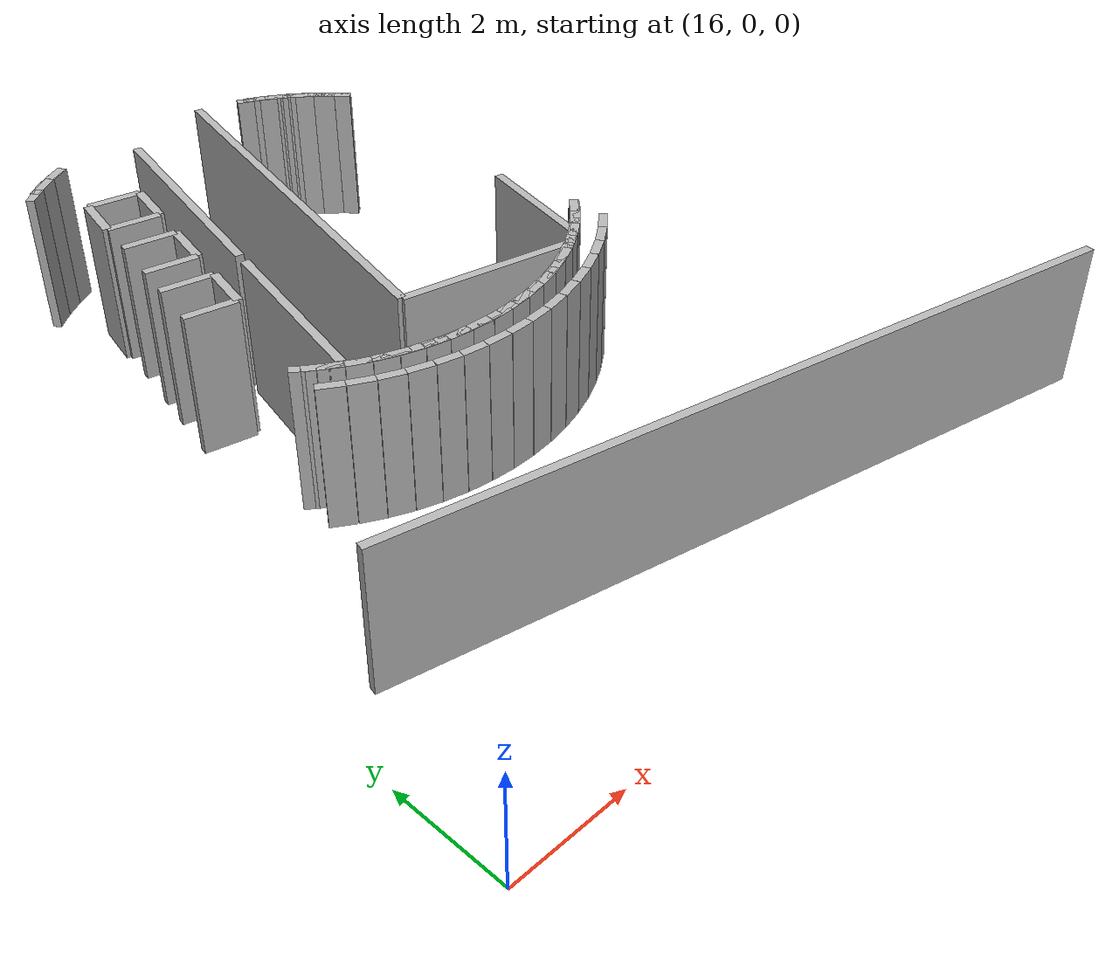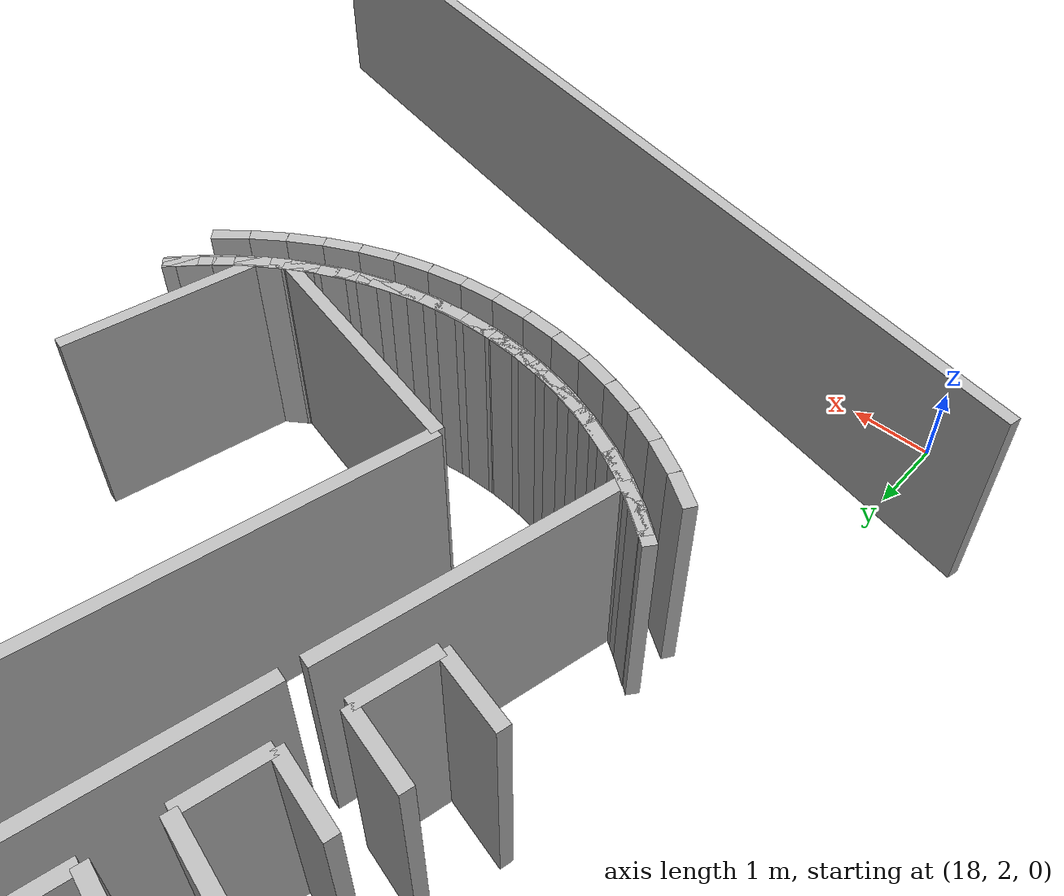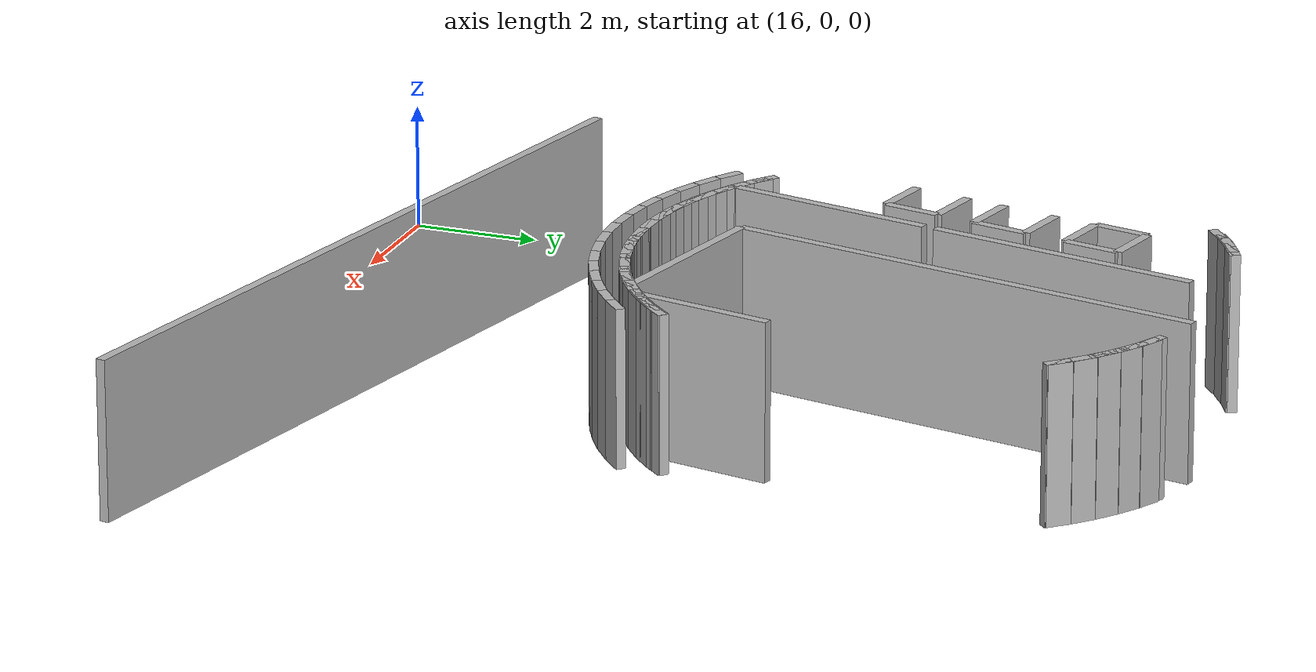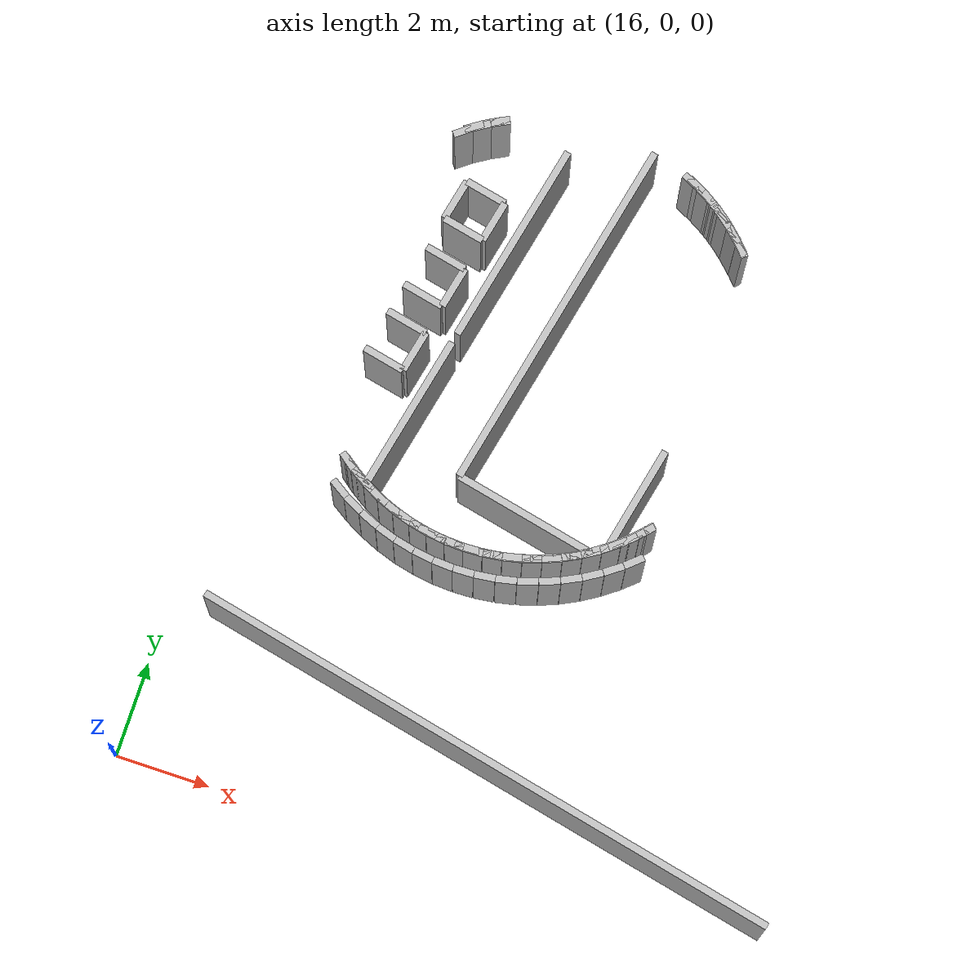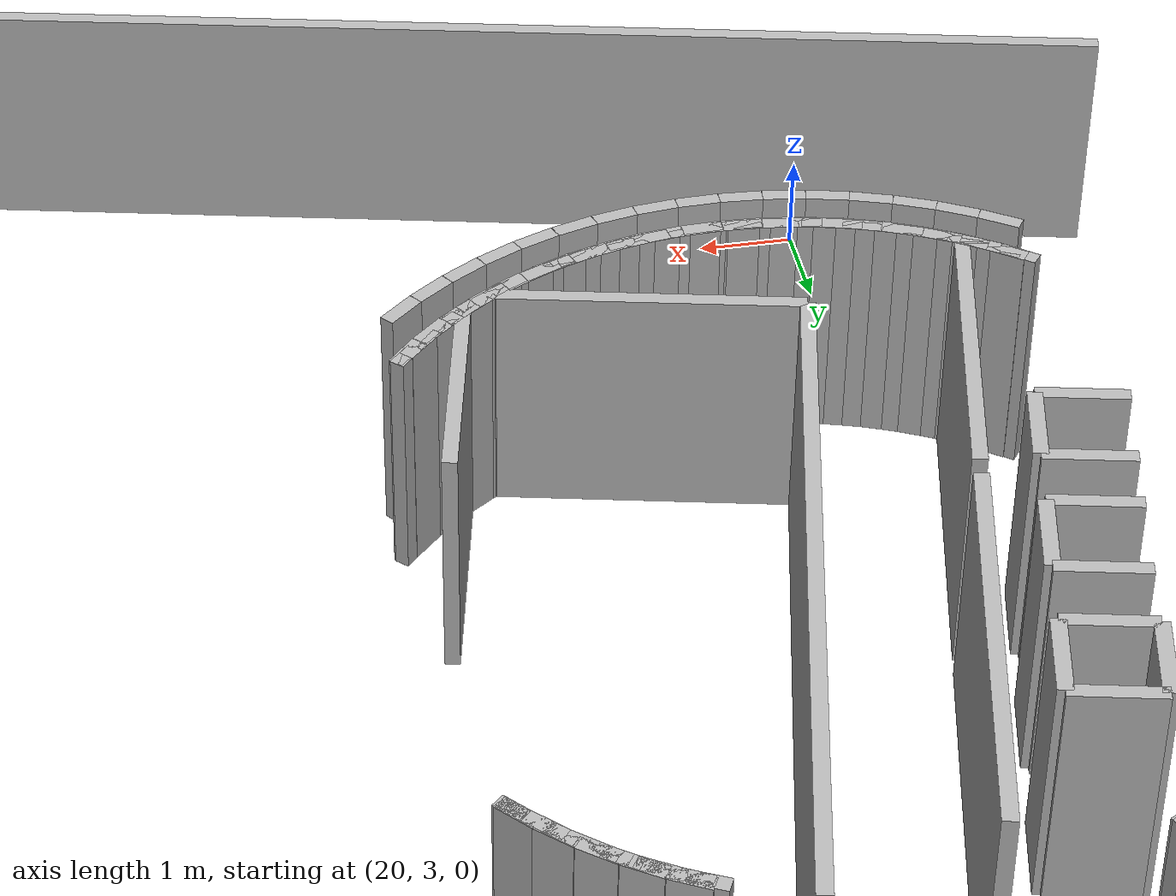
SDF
<sdf version="1.6">
 <model name="sps_2304">
  <static>1</static>
  <allow_auto_disable>0</allow_auto_disable>
  <link name="Wall10480">
   <collision name="collision"><geometry><box><size>12.9834 0.15 2.5</size></box></geometry></collision>
   <visual name="visual">
    <geometry><box><size>12.9834 0.15 2.5</size></box></geometry>
    <transparency>0.0</transparency>
   </visual>
   <pose>23.2192 2.0327 1.25 0 -0 2.92735</pose>
  </link>
  <link name="Wall10485">
   <collision name="collision"><geometry><box><size>0.399556 0.15 2.5</size></box></geometry></collision>
   <visual name="visual">
    <geometry><box><size>0.399556 0.15 2.5</size></box></geometry>
    <transparency>0.0</transparency>
   </visual>
   <pose>18.8158 6.81099 1.25 0 0 -0.624955</pose>
  </link>
  <link name="Wall10486">
   <collision name="collision"><geometry><box><size>0.399554 0.15 2.5</size></box></geometry></collision>
   <visual name="visual">
    <geometry><box><size>0.399554 0.15 2.5</size></box></geometry>
    <transparency>0.0</transparency>
   </visual>
   <pose>19.1495 6.59181 1.25 0 0 -0.537564</pose>
  </link>
  <link name="Wall10487">
   <collision name="collision"><geometry><box><size>0.399592 0.15 2.5</size></box></geometry></collision>
   <visual name="visual">
    <geometry><box><size>0.399592 0.15 2.5</size></box></geometry>
    <transparency>0.0</transparency>
   </visual>
   <pose>19.501 6.4026 1.25 0 0 -0.450054</pose>
  </link>
  <link name="Wall10488">
   <collision name="collision"><geometry><box><size>0.399425 0.15 2.5</size></box></geometry></collision>
   <visual name="visual">
    <geometry><box><size>0.399425 0.15 2.5</size></box></geometry>
    <transparency>0.0</transparency>
   </visual>
   <pose>19.8676 6.2448 1.25 0 0 -0.362884</pose>
  </link>
  <link name="Wall10489">
   <collision name="collision"><geometry><box><size>0.399441 0.15 2.5</size></box></geometry></collision>
   <visual name="visual">
    <geometry><box><size>0.399441 0.15 2.5</size></box></geometry>
    <transparency>0.0</transparency>
   </visual>
   <pose>20.2465 6.11961 1.25 0 0 -0.275298</pose>
  </link>
  <link name="Wall10490">
   <collision name="collision"><geometry><box><size>0.399612 0.15 2.5</size></box></geometry></collision>
   <visual name="visual">
    <geometry><box><size>0.399612 0.15 2.5</size></box></geometry>
    <transparency>0.0</transparency>
   </visual>
   <pose>20.635 6.028 1.25 0 0 -0.1879</pose>
  </link>
  <link name="Wall10491">
   <collision name="collision"><geometry><box><size>0.399406 0.15 2.5</size></box></geometry></collision>
   <visual name="visual">
    <geometry><box><size>0.399406 0.15 2.5</size></box></geometry>
    <transparency>0.0</transparency>
   </visual>
   <pose>21.03 5.97069 1.25 0 0 -0.100262</pose>
  </link>
  <link name="Wall10492">
   <collision name="collision"><geometry><box><size>0.399448 0.15 2.5</size></box></geometry></collision>
   <visual name="visual">
    <geometry><box><size>0.399448 0.15 2.5</size></box></geometry>
    <transparency>0.0</transparency>
   </visual>
   <pose>21.4284 5.9481 1.25 0 0 -0.0129883</pose>
  </link>
  <link name="Wall10493">
   <collision name="collision"><geometry><box><size>0.399488 0.15 2.5</size></box></geometry></collision>
   <visual name="visual">
    <geometry><box><size>0.399488 0.15 2.5</size></box></geometry>
    <transparency>0.0</transparency>
   </visual>
   <pose>21.8273 5.9604 1.25 0 -0 0.0746275</pose>
  </link>
  <link name="Wall10494">
   <collision name="collision"><geometry><box><size>0.399631 0.15 2.5</size></box></geometry></collision>
   <visual name="visual">
    <geometry><box><size>0.399631 0.15 2.5</size></box></geometry>
    <transparency>0.0</transparency>
   </visual>
   <pose>22.2237 6.00749 1.25 0 -0 0.161834</pose>
  </link>
  <link name="Wall10495">
   <collision name="collision"><geometry><box><size>0.399334 0.15 2.5</size></box></geometry></collision>
   <visual name="visual">
    <geometry><box><size>0.399334 0.15 2.5</size></box></geometry>
    <transparency>0.0</transparency>
   </visual>
   <pose>22.6144 6.08888 1.25 0 -0 0.248945</pose>
  </link>
  <link name="Wall10496">
   <collision name="collision"><geometry><box><size>0.399633 0.15 2.5</size></box></geometry></collision>
   <visual name="visual">
    <geometry><box><size>0.399633 0.15 2.5</size></box></geometry>
    <transparency>0.0</transparency>
   </visual>
   <pose>22.9965 6.20409 1.25 0 -0 0.336675</pose>
  </link>
  <link name="Wall10497">
   <collision name="collision"><geometry><box><size>0.399347 0.15 2.5</size></box></geometry></collision>
   <visual name="visual">
    <geometry><box><size>0.399347 0.15 2.5</size></box></geometry>
    <transparency>0.0</transparency>
   </visual>
   <pose>23.3671 6.35228 1.25 0 -0 0.424199</pose>
  </link>
  <link name="Wall10498">
   <collision name="collision"><geometry><box><size>0.399604 0.15 2.5</size></box></geometry></collision>
   <visual name="visual">
    <geometry><box><size>0.399604 0.15 2.5</size></box></geometry>
    <transparency>0.0</transparency>
   </visual>
   <pose>23.7233 6.53227 1.25 0 -0 0.511549</pose>
  </link>
  <link name="Wall10499">
   <collision name="collision"><geometry><box><size>0.399597 0.15 2.5</size></box></geometry></collision>
   <visual name="visual">
    <geometry><box><size>0.399597 0.15 2.5</size></box></geometry>
    <transparency>0.0</transparency>
   </visual>
   <pose>24.0625 6.74278 1.25 0 -0 0.599314</pose>
  </link>
  <link name="Wall10500">
   <collision name="collision"><geometry><box><size>0.399372 0.15 2.5</size></box></geometry></collision>
   <visual name="visual">
    <geometry><box><size>0.399372 0.15 2.5</size></box></geometry>
    <transparency>0.0</transparency>
   </visual>
   <pose>24.3819 6.98198 1.25 0 -0 0.686031</pose>
  </link>
  <link name="Wall10501">
   <collision name="collision"><geometry><box><size>0.399541 0.15 2.5</size></box></geometry></collision>
   <visual name="visual">
    <geometry><box><size>0.399541 0.15 2.5</size></box></geometry>
    <transparency>0.0</transparency>
   </visual>
   <pose>24.6793 7.24818 1.25 0 -0 0.774488</pose>
  </link>
  <link name="Wall10571">
   <collision name="collision"><geometry><box><size>0.396974 0.15 2.5</size></box></geometry></collision>
   <visual name="visual">
    <geometry><box><size>0.396974 0.15 2.5</size></box></geometry>
    <transparency>0.0</transparency>
   </visual>
   <pose>24.2517 14.0828 1.25 0 0 -0.655002</pose>
  </link>
  <link name="Wall10572">
   <collision name="collision"><geometry><box><size>0.396915 0.15 2.5</size></box></geometry></collision>
   <visual name="visual">
    <geometry><box><size>0.396915 0.15 2.5</size></box></geometry>
    <transparency>0.0</transparency>
   </visual>
   <pose>24.5554 13.8278 1.25 0 0 -0.741891</pose>
  </link>
  <link name="Wall10573">
   <collision name="collision"><geometry><box><size>0.39705 0.15 2.5</size></box></geometry></collision>
   <visual name="visual">
    <geometry><box><size>0.39705 0.15 2.5</size></box></geometry>
    <transparency>0.0</transparency>
   </visual>
   <pose>24.8358 13.5473 1.25 0 0 -0.829217</pose>
  </link>
  <link name="Wall10590">
   <collision name="collision"><geometry><box><size>0.396915 0.15 2.5</size></box></geometry></collision>
   <visual name="visual">
    <geometry><box><size>0.396915 0.15 2.5</size></box></geometry>
    <transparency>0.0</transparency>
   </visual>
   <pose>24.8339 7.40498 1.25 0 0 -2.31269</pose>
  </link>
  <link name="Wall10591">
   <collision name="collision"><geometry><box><size>0.39705 0.15 2.5</size></box></geometry></collision>
   <visual name="visual">
    <geometry><box><size>0.39705 0.15 2.5</size></box></geometry>
    <transparency>0.0</transparency>
   </visual>
   <pose>24.5535 7.12459 1.25 0 0 -2.40001</pose>
  </link>
  <link name="Wall10592">
   <collision name="collision"><geometry><box><size>0.396971 0.15 2.5</size></box></geometry></collision>
   <visual name="visual">
    <geometry><box><size>0.396971 0.15 2.5</size></box></geometry>
    <transparency>0.0</transparency>
   </visual>
   <pose>24.2496 6.8697 1.25 0 0 -2.48736</pose>
  </link>
  <link name="Wall10593">
   <collision name="collision"><geometry><box><size>0.396899 0.15 2.5</size></box></geometry></collision>
   <visual name="visual">
    <geometry><box><size>0.396899 0.15 2.5</size></box></geometry>
    <transparency>0.0</transparency>
   </visual>
   <pose>23.9247 6.64232 1.25 0 0 -2.57453</pose>
  </link>
  <link name="Wall10594">
   <collision name="collision"><geometry><box><size>0.39704 0.15 2.5</size></box></geometry></collision>
   <visual name="visual">
    <geometry><box><size>0.39704 0.15 2.5</size></box></geometry>
    <transparency>0.0</transparency>
   </visual>
   <pose>23.5812 6.44411 1.25 0 0 -2.66193</pose>
  </link>
  <link name="Wall10595">
   <collision name="collision"><geometry><box><size>0.396988 0.15 2.5</size></box></geometry></collision>
   <visual name="visual">
    <geometry><box><size>0.396988 0.15 2.5</size></box></geometry>
    <transparency>0.0</transparency>
   </visual>
   <pose>23.2216 6.2766 1.25 0 0 -2.74924</pose>
  </link>
  <link name="Wall10596">
   <collision name="collision"><geometry><box><size>0.396923 0.15 2.5</size></box></geometry></collision>
   <visual name="visual">
    <geometry><box><size>0.396923 0.15 2.5</size></box></geometry>
    <transparency>0.0</transparency>
   </visual>
   <pose>22.8489 6.1411 1.25 0 0 -2.83657</pose>
  </link>
  <link name="Wall10597">
   <collision name="collision"><geometry><box><size>0.39696 0.15 2.5</size></box></geometry></collision>
   <visual name="visual">
    <geometry><box><size>0.39696 0.15 2.5</size></box></geometry>
    <transparency>0.0</transparency>
   </visual>
   <pose>22.4658 6.03859 1.25 0 0 -2.92369</pose>
  </link>
  <link name="Wall10598">
   <collision name="collision"><geometry><box><size>0.397004 0.15 2.5</size></box></geometry></collision>
   <visual name="visual">
    <geometry><box><size>0.397004 0.15 2.5</size></box></geometry>
    <transparency>0.0</transparency>
   </visual>
   <pose>22.0752 5.9698 1.25 0 0 -3.01085</pose>
  </link>
  <link name="Wall10599">
   <collision name="collision"><geometry><box><size>0.39698 0.15 2.5</size></box></geometry></collision>
   <visual name="visual">
    <geometry><box><size>0.39698 0.15 2.5</size></box></geometry>
    <transparency>0.0</transparency>
   </visual>
   <pose>21.6801 5.93532 1.25 0 0 -3.09822</pose>
  </link>
  <link name="Wall10600">
   <collision name="collision"><geometry><box><size>0.396996 0.15 2.5</size></box></geometry></collision>
   <visual name="visual">
    <geometry><box><size>0.396996 0.15 2.5</size></box></geometry>
    <transparency>0.0</transparency>
   </visual>
   <pose>21.2835 5.9355 1.25 0 -0 3.0973</pose>
  </link>
  <link name="Wall10601">
   <collision name="collision"><geometry><box><size>0.39677 0.15 2.5</size></box></geometry></collision>
   <visual name="visual">
    <geometry><box><size>0.39677 0.15 2.5</size></box></geometry>
    <transparency>0.0</transparency>
   </visual>
   <pose>20.8885 5.9702 1.25 0 -0 3.01062</pose>
  </link>
  <link name="Wall10602">
   <collision name="collision"><geometry><box><size>0.397 0.15 2.5</size></box></geometry></collision>
   <visual name="visual">
    <geometry><box><size>0.397 0.15 2.5</size></box></geometry>
    <transparency>0.0</transparency>
   </visual>
   <pose>20.4981 6.03911 1.25 0 -0 2.92324</pose>
  </link>
  <link name="Wall10603">
   <collision name="collision"><geometry><box><size>0.397033 0.15 2.5</size></box></geometry></collision>
   <visual name="visual">
    <geometry><box><size>0.397033 0.15 2.5</size></box></geometry>
    <transparency>0.0</transparency>
   </visual>
   <pose>20.115 6.14189 1.25 0 -0 2.83569</pose>
  </link>
  <link name="Wall10604">
   <collision name="collision"><geometry><box><size>0.396912 0.15 2.5</size></box></geometry></collision>
   <visual name="visual">
    <geometry><box><size>0.396912 0.15 2.5</size></box></geometry>
    <transparency>0.0</transparency>
   </visual>
   <pose>19.7424 6.27769 1.25 0 -0 2.74849</pose>
  </link>
  <link name="Wall10605">
   <collision name="collision"><geometry><box><size>0.39688 0.15 2.5</size></box></geometry></collision>
   <visual name="visual">
    <geometry><box><size>0.39688 0.15 2.5</size></box></geometry>
    <transparency>0.0</transparency>
   </visual>
   <pose>19.383 6.44539 1.25 0 -0 2.66137</pose>
  </link>
  <link name="Wall10606">
   <collision name="collision"><geometry><box><size>0.39703 0.15 2.5</size></box></geometry></collision>
   <visual name="visual">
    <geometry><box><size>0.39703 0.15 2.5</size></box></geometry>
    <transparency>0.0</transparency>
   </visual>
   <pose>19.0397 6.64378 1.25 0 -0 2.57401</pose>
  </link>
  <link name="Wall10607">
   <collision name="collision"><geometry><box><size>0.396826 0.15 2.5</size></box></geometry></collision>
   <visual name="visual">
    <geometry><box><size>0.396826 0.15 2.5</size></box></geometry>
    <transparency>0.0</transparency>
   </visual>
   <pose>18.7149 6.87129 1.25 0 -0 2.48708</pose>
  </link>
  <link name="Wall10628">
   <collision name="collision"><geometry><box><size>0.396971 0.15 2.5</size></box></geometry></collision>
   <visual name="visual">
    <geometry><box><size>0.396971 0.15 2.5</size></box></geometry>
    <transparency>0.0</transparency>
   </visual>
   <pose>18.717 14.0843 1.25 0 -0 0.654233</pose>
  </link>
  <link name="Wall10629">
   <collision name="collision"><geometry><box><size>0.396899 0.15 2.5</size></box></geometry></collision>
   <visual name="visual">
    <geometry><box><size>0.396899 0.15 2.5</size></box></geometry>
    <transparency>0.0</transparency>
   </visual>
   <pose>19.0419 14.3117 1.25 0 -0 0.567059</pose>
  </link>
  <link name="Wall10630">
   <collision name="collision"><geometry><box><size>0.39704 0.15 2.5</size></box></geometry></collision>
   <visual name="visual">
    <geometry><box><size>0.39704 0.15 2.5</size></box></geometry>
    <transparency>0.0</transparency>
   </visual>
   <pose>19.3854 14.5099 1.25 0 -0 0.479667</pose>
  </link>
  <link name="Wall10641">
   <collision name="collision"><geometry><box><size>0.396962 0.15 2.5</size></box></geometry></collision>
   <visual name="visual">
    <geometry><box><size>0.396962 0.15 2.5</size></box></geometry>
    <transparency>0.0</transparency>
   </visual>
   <pose>23.5835 14.5088 1.25 0 0 -0.480289</pose>
  </link>
  <link name="Wall11240">
   <collision name="collision"><geometry><box><size>3.0464 0.15 2.5</size></box></geometry></collision>
   <visual name="visual">
    <geometry><box><size>3.0464 0.15 2.5</size></box></geometry>
    <transparency>0.0</transparency>
   </visual>
   <pose>22.4169 6.96437 1.25 0 -0 2.92866</pose>
  </link>
  <link name="Wall11241">
   <collision name="collision"><geometry><box><size>7.78294 0.15 2.5</size></box></geometry></collision>
   <visual name="visual">
    <geometry><box><size>7.78294 0.15 2.5</size></box></geometry>
    <transparency>0.0</transparency>
   </visual>
   <pose>21.7503 11.0899 1.25 0 -0 1.35791</pose>
  </link>
  <link name="Wall11245">
   <collision name="collision"><geometry><box><size>0.37144 0.15 2.5</size></box></geometry></collision>
   <visual name="visual">
    <geometry><box><size>0.37144 0.15 2.5</size></box></geometry>
    <transparency>0.0</transparency>
   </visual>
   <pose>23.4463 14.5757 1.25 0 0 -0.446524</pose>
  </link>
  <link name="Wall11246">
   <collision name="collision"><geometry><box><size>0.371357 0.15 2.5</size></box></geometry></collision>
   <visual name="visual">
    <geometry><box><size>0.371357 0.15 2.5</size></box></geometry>
    <transparency>0.0</transparency>
   </visual>
   <pose>23.7742 14.4018 1.25 0 0 -0.528891</pose>
  </link>
  <link name="Wall11247">
   <collision name="collision"><geometry><box><size>0.0620287 0.15 2.5</size></box></geometry></collision>
   <visual name="visual">
    <geometry><box><size>0.0620287 0.15 2.5</size></box></geometry>
    <transparency>0.0</transparency>
   </visual>
   <pose>23.9605 14.2912 1.25 0 0 -0.57654</pose>
  </link>
  <link name="Wall11248">
   <collision name="collision"><geometry><box><size>0.0417111 0.15 2.5</size></box></geometry></collision>
   <visual name="visual">
    <geometry><box><size>0.0417111 0.15 2.5</size></box></geometry>
    <transparency>0.0</transparency>
   </visual>
   <pose>24.0039 14.2628 1.25 0 0 -0.58435</pose>
  </link>
  <link name="Wall11249">
   <collision name="collision"><geometry><box><size>0.101952 0.15 2.5</size></box></geometry></collision>
   <visual name="visual">
    <geometry><box><size>0.101952 0.15 2.5</size></box></geometry>
    <transparency>0.0</transparency>
   </visual>
   <pose>24.0633 14.2224 1.25 0 0 -0.602781</pose>
  </link>
  <link name="Wall11250">
   <collision name="collision"><geometry><box><size>0.0912877 0.15 2.5</size></box></geometry></collision>
   <visual name="visual">
    <geometry><box><size>0.0912877 0.15 2.5</size></box></geometry>
    <transparency>0.0</transparency>
   </visual>
   <pose>24.1423 14.1668 1.25 0 0 -0.624913</pose>
  </link>
  <link name="Wall11251">
   <collision name="collision"><geometry><box><size>0.393256 0.15 2.5</size></box></geometry></collision>
   <visual name="visual">
    <geometry><box><size>0.393256 0.15 2.5</size></box></geometry>
    <transparency>0.0</transparency>
   </visual>
   <pose>24.332 14.0162 1.25 0 0 -0.681722</pose>
  </link>
  <link name="Wall11252">
   <collision name="collision"><geometry><box><size>0.393359 0.15 2.5</size></box></geometry></collision>
   <visual name="visual">
    <geometry><box><size>0.393359 0.15 2.5</size></box></geometry>
    <transparency>0.0</transparency>
   </visual>
   <pose>24.6261 13.7556 1.25 0 0 -0.768391</pose>
  </link>
  <link name="Wall11267">
   <collision name="collision"><geometry><box><size>2.28003 0.15 2.5</size></box></geometry></collision>
   <visual name="visual">
    <geometry><box><size>2.28003 0.15 2.5</size></box></geometry>
    <transparency>0.0</transparency>
   </visual>
   <pose>24.4531 7.968 1.25 0 0 -1.78364</pose>
  </link>
  <link name="Wall16807">
   <collision name="collision"><geometry><box><size>3.31596 0.15 2.5</size></box></geometry></collision>
   <visual name="visual">
    <geometry><box><size>3.31596 0.15 2.5</size></box></geometry>
    <transparency>0.0</transparency>
   </visual>
   <pose>19.5658 8.22438 1.25 0 0 -1.78388</pose>
  </link>
  <link name="Wall16808">
   <collision name="collision"><geometry><box><size>0.0517386 0.15 2.5</size></box></geometry></collision>
   <visual name="visual">
    <geometry><box><size>0.0517386 0.15 2.5</size></box></geometry>
    <transparency>0.0</transparency>
   </visual>
   <pose>19.2098 6.5786 1.25 0 0 -1.78115</pose>
  </link>
  <link name="Wall16824">
   <collision name="collision"><geometry><box><size>0.396791 0.15 2.5</size></box></geometry></collision>
   <visual name="visual">
    <geometry><box><size>0.396791 0.15 2.5</size></box></geometry>
    <transparency>0.0</transparency>
   </visual>
   <pose>24.8274 13.5668 1.25 0 -0 2.31235</pose>
  </link>
  <link name="Wall16825">
   <collision name="collision"><geometry><box><size>0.396915 0.15 2.5</size></box></geometry></collision>
   <visual name="visual">
    <geometry><box><size>0.396915 0.15 2.5</size></box></geometry>
    <transparency>0.0</transparency>
   </visual>
   <pose>24.5471 13.8472 1.25 0 -0 2.3997</pose>
  </link>
  <link name="Wall16826">
   <collision name="collision"><geometry><box><size>0.39712 0.15 2.5</size></box></geometry></collision>
   <visual name="visual">
    <geometry><box><size>0.39712 0.15 2.5</size></box></geometry>
    <transparency>0.0</transparency>
   </visual>
   <pose>24.2433 14.1022 1.25 0 -0 2.48687</pose>
  </link>
  <link name="Wall16827">
   <collision name="collision"><geometry><box><size>0.396843 0.15 2.5</size></box></geometry></collision>
   <visual name="visual">
    <geometry><box><size>0.396843 0.15 2.5</size></box></geometry>
    <transparency>0.0</transparency>
   </visual>
   <pose>23.9185 14.3298 1.25 0 -0 2.5739</pose>
  </link>
  <link name="Wall16828">
   <collision name="collision"><geometry><box><size>0.396908 0.15 2.5</size></box></geometry></collision>
   <visual name="visual">
    <geometry><box><size>0.396908 0.15 2.5</size></box></geometry>
    <transparency>0.0</transparency>
   </visual>
   <pose>23.5752 14.5282 1.25 0 -0 2.66123</pose>
  </link>
  <link name="Wall16839">
   <collision name="collision"><geometry><box><size>0.396796 0.15 2.5</size></box></geometry></collision>
   <visual name="visual">
    <geometry><box><size>0.396796 0.15 2.5</size></box></geometry>
    <transparency>0.0</transparency>
   </visual>
   <pose>19.3771 14.5293 1.25 0 0 -2.66178</pose>
  </link>
  <link name="Wall16840">
   <collision name="collision"><geometry><box><size>0.397105 0.15 2.5</size></box></geometry></collision>
   <visual name="visual">
    <geometry><box><size>0.397105 0.15 2.5</size></box></geometry>
    <transparency>0.0</transparency>
   </visual>
   <pose>19.0336 14.3311 1.25 0 0 -2.57486</pose>
  </link>
  <link name="Wall16863">
   <collision name="collision"><geometry><box><size>0.396899 0.15 2.5</size></box></geometry></collision>
   <visual name="visual">
    <geometry><box><size>0.396899 0.15 2.5</size></box></geometry>
    <transparency>0.0</transparency>
   </visual>
   <pose>19.0317 6.66307 1.25 0 0 -0.567059</pose>
  </link>
  <link name="Wall16864">
   <collision name="collision"><geometry><box><size>0.39688 0.15 2.5</size></box></geometry></collision>
   <visual name="visual">
    <geometry><box><size>0.39688 0.15 2.5</size></box></geometry>
    <transparency>0.0</transparency>
   </visual>
   <pose>19.3751 6.4648 1.25 0 0 -0.480223</pose>
  </link>
  <link name="Wall16865">
   <collision name="collision"><geometry><box><size>0.397081 0.15 2.5</size></box></geometry></collision>
   <visual name="visual">
    <geometry><box><size>0.397081 0.15 2.5</size></box></geometry>
    <transparency>0.0</transparency>
   </visual>
   <pose>19.7345 6.2971 1.25 0 0 -0.392923</pose>
  </link>
  <link name="Wall16866">
   <collision name="collision"><geometry><box><size>0.3968 0.15 2.5</size></box></geometry></collision>
   <visual name="visual">
    <geometry><box><size>0.3968 0.15 2.5</size></box></geometry>
    <transparency>0.0</transparency>
   </visual>
   <pose>20.107 6.1613 1.25 0 0 -0.306087</pose>
  </link>
  <link name="Wall16867">
   <collision name="collision"><geometry><box><size>0.397059 0.15 2.5</size></box></geometry></collision>
   <visual name="visual">
    <geometry><box><size>0.397059 0.15 2.5</size></box></geometry>
    <transparency>0.0</transparency>
   </visual>
   <pose>20.49 6.05852 1.25 0 0 -0.218319</pose>
  </link>
  <link name="Wall16868">
   <collision name="collision"><geometry><box><size>0.397012 0.15 2.5</size></box></geometry></collision>
   <visual name="visual">
    <geometry><box><size>0.397012 0.15 2.5</size></box></geometry>
    <transparency>0.0</transparency>
   </visual>
   <pose>20.8807 5.98961 1.25 0 0 -0.130896</pose>
  </link>
  <link name="Wall16869">
   <collision name="collision"><geometry><box><size>0.396988 0.15 2.5</size></box></geometry></collision>
   <visual name="visual">
    <geometry><box><size>0.396988 0.15 2.5</size></box></geometry>
    <transparency>0.0</transparency>
   </visual>
   <pose>21.2758 5.955 1.25 0 0 -0.0438316</pose>
  </link>
  <link name="Wall16870">
   <collision name="collision"><geometry><box><size>0.396736 0.15 2.5</size></box></geometry></collision>
   <visual name="visual">
    <geometry><box><size>0.396736 0.15 2.5</size></box></geometry>
    <transparency>0.0</transparency>
   </visual>
   <pose>21.6723 5.95491 1.25 0 -0 0.0433974</pose>
  </link>
  <link name="Wall16871">
   <collision name="collision"><geometry><box><size>0.397162 0.15 2.5</size></box></geometry></collision>
   <visual name="visual">
    <geometry><box><size>0.397162 0.15 2.5</size></box></geometry>
    <transparency>0.0</transparency>
   </visual>
   <pose>22.0673 5.9893 1.25 0 -0 0.130226</pose>
  </link>
  <link name="Wall16872">
   <collision name="collision"><geometry><box><size>0.396781 0.15 2.5</size></box></geometry></collision>
   <visual name="visual">
    <geometry><box><size>0.396781 0.15 2.5</size></box></geometry>
    <transparency>0.0</transparency>
   </visual>
   <pose>22.4579 6.058 1.25 0 -0 0.218002</pose>
  </link>
  <link name="Wall16873">
   <collision name="collision"><geometry><box><size>0.396978 0.15 2.5</size></box></geometry></collision>
   <visual name="visual">
    <geometry><box><size>0.396978 0.15 2.5</size></box></geometry>
    <transparency>0.0</transparency>
   </visual>
   <pose>22.8409 6.1606 1.25 0 -0 0.305462</pose>
  </link>
  <link name="Wall16874">
   <collision name="collision"><geometry><box><size>0.396988 0.15 2.5</size></box></geometry></collision>
   <visual name="visual">
    <geometry><box><size>0.396988 0.15 2.5</size></box></geometry>
    <transparency>0.0</transparency>
   </visual>
   <pose>23.2136 6.29619 1.25 0 -0 0.392355</pose>
  </link>
  <link name="Wall16875">
   <collision name="collision"><geometry><box><size>0.396986 0.15 2.5</size></box></geometry></collision>
   <visual name="visual">
    <geometry><box><size>0.396986 0.15 2.5</size></box></geometry>
    <transparency>0.0</transparency>
   </visual>
   <pose>23.5731 6.4637 1.25 0 -0 0.479738</pose>
  </link>
  <link name="Wall16876">
   <collision name="collision"><geometry><box><size>0.39695 0.15 2.5</size></box></geometry></collision>
   <visual name="visual">
    <geometry><box><size>0.39695 0.15 2.5</size></box></geometry>
    <transparency>0.0</transparency>
   </visual>
   <pose>23.9166 6.66191 1.25 0 -0 0.566977</pose>
  </link>
  <link name="Wall16877">
   <collision name="collision"><geometry><box><size>0.396971 0.15 2.5</size></box></geometry></collision>
   <visual name="visual">
    <geometry><box><size>0.396971 0.15 2.5</size></box></geometry>
    <transparency>0.0</transparency>
   </visual>
   <pose>24.2416 6.8893 1.25 0 -0 0.654233</pose>
  </link>
  <link name="Wall16878">
   <collision name="collision"><geometry><box><size>0.396926 0.15 2.5</size></box></geometry></collision>
   <visual name="visual">
    <geometry><box><size>0.396926 0.15 2.5</size></box></geometry>
    <transparency>0.0</transparency>
   </visual>
   <pose>24.5455 7.14409 1.25 0 -0 0.741239</pose>
  </link>
  <link name="Wall16879">
   <collision name="collision"><geometry><box><size>0.396915 0.15 2.5</size></box></geometry></collision>
   <visual name="visual">
    <geometry><box><size>0.396915 0.15 2.5</size></box></geometry>
    <transparency>0.0</transparency>
   </visual>
   <pose>24.8259 7.42439 1.25 0 -0 0.828906</pose>
  </link>
  <link name="Wall23970">
   <collision name="collision"><geometry><box><size>0.399715 0.15 2.5</size></box></geometry></collision>
   <visual name="visual">
    <geometry><box><size>0.399715 0.15 2.5</size></box></geometry>
    <transparency>0.0</transparency>
   </visual>
   <pose>19.2458 14.4609 1.25 0 0 -2.63142</pose>
  </link>
  <link name="Wall23971">
   <collision name="collision"><geometry><box><size>0.39986 0.15 2.5</size></box></geometry></collision>
   <visual name="visual">
    <geometry><box><size>0.39986 0.15 2.5</size></box></geometry>
    <transparency>0.0</transparency>
   </visual>
   <pose>18.9062 14.2508 1.25 0 0 -2.54402</pose>
  </link>
  <link name="Wall23993">
   <collision name="collision"><geometry><box><size>0.399886 0.15 2.5</size></box></geometry></collision>
   <visual name="visual">
    <geometry><box><size>0.399886 0.15 2.5</size></box></geometry>
    <transparency>0.0</transparency>
   </visual>
   <pose>18.8603 6.76778 1.25 0 0 -0.609763</pose>
  </link>
  <link name="Wall23994">
   <collision name="collision"><geometry><box><size>0.399882 0.15 2.5</size></box></geometry></collision>
   <visual name="visual">
    <geometry><box><size>0.399882 0.15 2.5</size></box></geometry>
    <transparency>0.0</transparency>
   </visual>
   <pose>19.1976 6.55357 1.25 0 0 -0.522043</pose>
  </link>
  <link name="Wall23995">
   <collision name="collision"><geometry><box><size>0.399804 0.15 2.5</size></box></geometry></collision>
   <visual name="visual">
    <geometry><box><size>0.399804 0.15 2.5</size></box></geometry>
    <transparency>0.0</transparency>
   </visual>
   <pose>19.5522 6.36967 1.25 0 0 -0.434764</pose>
  </link>
  <link name="Wall23996">
   <collision name="collision"><geometry><box><size>0.39984 0.15 2.5</size></box></geometry></collision>
   <visual name="visual">
    <geometry><box><size>0.39984 0.15 2.5</size></box></geometry>
    <transparency>0.0</transparency>
   </visual>
   <pose>19.9216 6.2177 1.25 0 0 -0.345889</pose>
  </link>
  <link name="Wall23997">
   <collision name="collision"><geometry><box><size>0.399709 0.15 2.5</size></box></geometry></collision>
   <visual name="visual">
    <geometry><box><size>0.399709 0.15 2.5</size></box></geometry>
    <transparency>0.0</transparency>
   </visual>
   <pose>20.3028 6.0988 1.25 0 0 -0.258645</pose>
  </link>
  <link name="Wall23998">
   <collision name="collision"><geometry><box><size>0.399775 0.15 2.5</size></box></geometry></collision>
   <visual name="visual">
    <geometry><box><size>0.399775 0.15 2.5</size></box></geometry>
    <transparency>0.0</transparency>
   </visual>
   <pose>20.693 6.01378 1.25 0 0 -0.170445</pose>
  </link>
  <link name="Wall23999">
   <collision name="collision"><geometry><box><size>0.399981 0.15 2.5</size></box></geometry></collision>
   <visual name="visual">
    <geometry><box><size>0.399981 0.15 2.5</size></box></geometry>
    <transparency>0.0</transparency>
   </visual>
   <pose>21.0893 5.96339 1.25 0 0 -0.0824949</pose>
  </link>
  <link name="Wall24000">
   <collision name="collision"><geometry><box><size>0.399785 0.15 2.5</size></box></geometry></collision>
   <visual name="visual">
    <geometry><box><size>0.399785 0.15 2.5</size></box></geometry>
    <transparency>0.0</transparency>
   </visual>
   <pose>21.4885 5.94789 1.25 0 -0 0.00488546</pose>
  </link>
  <link name="Wall24001">
   <collision name="collision"><geometry><box><size>0.399748 0.15 2.5</size></box></geometry></collision>
   <visual name="visual">
    <geometry><box><size>0.399748 0.15 2.5</size></box></geometry>
    <transparency>0.0</transparency>
   </visual>
   <pose>21.8874 5.96748 1.25 0 -0 0.0932725</pose>
  </link>
  <link name="Wall24002">
   <collision name="collision"><geometry><box><size>0.39973 0.15 2.5</size></box></geometry></collision>
   <visual name="visual">
    <geometry><box><size>0.39973 0.15 2.5</size></box></geometry>
    <transparency>0.0</transparency>
   </visual>
   <pose>22.283 6.02211 1.25 0 -0 0.181165</pose>
  </link>
  <link name="Wall24003">
   <collision name="collision"><geometry><box><size>0.400026 0.15 2.5</size></box></geometry></collision>
   <visual name="visual">
    <geometry><box><size>0.400026 0.15 2.5</size></box></geometry>
    <transparency>0.0</transparency>
   </visual>
   <pose>22.6724 6.11131 1.25 0 -0 0.269183</pose>
  </link>
  <link name="Wall24004">
   <collision name="collision"><geometry><box><size>0.399737 0.15 2.5</size></box></geometry></collision>
   <visual name="visual">
    <geometry><box><size>0.399737 0.15 2.5</size></box></geometry>
    <transparency>0.0</transparency>
   </visual>
   <pose>23.0525 6.2343 1.25 0 -0 0.356716</pose>
  </link>
  <link name="Wall24005">
   <collision name="collision"><geometry><box><size>0.399735 0.15 2.5</size></box></geometry></collision>
   <visual name="visual">
    <geometry><box><size>0.399735 0.15 2.5</size></box></geometry>
    <transparency>0.0</transparency>
   </visual>
   <pose>23.4202 6.39009 1.25 0 -0 0.4448</pose>
  </link>
  <link name="Wall24006">
   <collision name="collision"><geometry><box><size>0.399743 0.15 2.5</size></box></geometry></collision>
   <visual name="visual">
    <geometry><box><size>0.399743 0.15 2.5</size></box></geometry>
    <transparency>0.0</transparency>
   </visual>
   <pose>23.7728 6.57759 1.25 0 -0 0.532669</pose>
  </link>
  <link name="Wall24007">
   <collision name="collision"><geometry><box><size>0.40002 0.15 2.5</size></box></geometry></collision>
   <visual name="visual">
    <geometry><box><size>0.40002 0.15 2.5</size></box></geometry>
    <transparency>0.0</transparency>
   </visual>
   <pose>24.1077 6.79539 1.25 0 -0 0.620551</pose>
  </link>
  <link name="Wall24008">
   <collision name="collision"><geometry><box><size>0.399833 0.15 2.5</size></box></geometry></collision>
   <visual name="visual">
    <geometry><box><size>0.399833 0.15 2.5</size></box></geometry>
    <transparency>0.0</transparency>
   </visual>
   <pose>24.4223 7.04179 1.25 0 -0 0.708577</pose>
  </link>
  <link name="Wall24009">
   <collision name="collision"><geometry><box><size>0.399669 0.15 2.5</size></box></geometry></collision>
   <visual name="visual">
    <geometry><box><size>0.399669 0.15 2.5</size></box></geometry>
    <transparency>0.0</transparency>
   </visual>
   <pose>24.7139 7.31468 1.25 0 -0 0.795981</pose>
  </link>
  <link name="Wall24027">
   <collision name="collision"><geometry><box><size>0.399749 0.15 2.5</size></box></geometry></collision>
   <visual name="visual">
    <geometry><box><size>0.399749 0.15 2.5</size></box></geometry>
    <transparency>0.0</transparency>
   </visual>
   <pose>24.6061 13.7788 1.25 0 -0 2.37887</pose>
  </link>
  <link name="Wall28993">
   <collision name="collision"><geometry><box><size>0.895262 0.15 2.5</size></box></geometry></collision>
   <visual name="visual">
    <geometry><box><size>0.895262 0.15 2.5</size></box></geometry>
    <transparency>0.0</transparency>
   </visual>
   <pose>19.2384 11.464 1.25 0 0 -0.21316</pose>
  </link>
  <link name="Wall28994">
   <collision name="collision"><geometry><box><size>0.894985 0.15 2.5</size></box></geometry></collision>
   <visual name="visual">
    <geometry><box><size>0.894985 0.15 2.5</size></box></geometry>
    <transparency>0.0</transparency>
   </visual>
   <pose>19.5813 10.9319 1.25 0 0 -1.78381</pose>
  </link>
  <link name="Wall28995">
   <collision name="collision"><geometry><box><size>0.895211 0.15 2.5</size></box></geometry></collision>
   <visual name="visual">
    <geometry><box><size>0.895211 0.15 2.5</size></box></geometry>
    <transparency>0.0</transparency>
   </visual>
   <pose>19.0492 10.5891 1.25 0 -0 2.9287</pose>
  </link>
  <link name="Wall29016">
   <collision name="collision"><geometry><box><size>0.435345 0.15 2.5</size></box></geometry></collision>
   <visual name="visual">
    <geometry><box><size>0.435345 0.15 2.5</size></box></geometry>
    <transparency>0.0</transparency>
   </visual>
   <pose>18.7394 6.28398 1.25 0 0 -0.574665</pose>
  </link>
  <link name="Wall29017">
   <collision name="collision"><geometry><box><size>0.435253 0.15 2.5</size></box></geometry></collision>
   <visual name="visual">
    <geometry><box><size>0.435253 0.15 2.5</size></box></geometry>
    <transparency>0.0</transparency>
   </visual>
   <pose>19.1143 6.06358 1.25 0 0 -0.488233</pose>
  </link>
  <link name="Wall29018">
   <collision name="collision"><geometry><box><size>0.435316 0.15 2.5</size></box></geometry></collision>
   <visual name="visual">
    <geometry><box><size>0.435316 0.15 2.5</size></box></geometry>
    <transparency>0.0</transparency>
   </visual>
   <pose>19.5069 5.87651 1.25 0 0 -0.401154</pose>
  </link>
  <link name="Wall29019">
   <collision name="collision"><geometry><box><size>0.435172 0.15 2.5</size></box></geometry></collision>
   <visual name="visual">
    <geometry><box><size>0.435172 0.15 2.5</size></box></geometry>
    <transparency>0.0</transparency>
   </visual>
   <pose>19.9141 5.7242 1.25 0 0 -0.314565</pose>
  </link>
  <link name="Wall29020">
   <collision name="collision"><geometry><box><size>0.435277 0.15 2.5</size></box></geometry></collision>
   <visual name="visual">
    <geometry><box><size>0.435277 0.15 2.5</size></box></geometry>
    <transparency>0.0</transparency>
   </visual>
   <pose>20.3331 5.60768 1.25 0 0 -0.228008</pose>
  </link>
  <link name="Wall29021">
   <collision name="collision"><geometry><box><size>0.435295 0.15 2.5</size></box></geometry></collision>
   <visual name="visual">
    <geometry><box><size>0.435295 0.15 2.5</size></box></geometry>
    <transparency>0.0</transparency>
   </visual>
   <pose>20.7606 5.52788 1.25 0 0 -0.141104</pose>
  </link>
  <link name="Wall29022">
   <collision name="collision"><geometry><box><size>0.435283 0.15 2.5</size></box></geometry></collision>
   <visual name="visual">
    <geometry><box><size>0.435283 0.15 2.5</size></box></geometry>
    <transparency>0.0</transparency>
   </visual>
   <pose>21.1934 5.48537 1.25 0 0 -0.0547129</pose>
  </link>
  <link name="Wall29023">
   <collision name="collision"><geometry><box><size>0.43523 0.15 2.5</size></box></geometry></collision>
   <visual name="visual">
    <geometry><box><size>0.43523 0.15 2.5</size></box></geometry>
    <transparency>0.0</transparency>
   </visual>
   <pose>21.6282 5.48057 1.25 0 -0 0.0326809</pose>
  </link>
  <link name="Wall29024">
   <collision name="collision"><geometry><box><size>0.435264 0.15 2.5</size></box></geometry></collision>
   <visual name="visual">
    <geometry><box><size>0.435264 0.15 2.5</size></box></geometry>
    <transparency>0.0</transparency>
   </visual>
   <pose>22.0618 5.5135 1.25 0 -0 0.118911</pose>
  </link>
  <link name="Wall29025">
   <collision name="collision"><geometry><box><size>0.43522 0.15 2.5</size></box></geometry></collision>
   <visual name="visual">
    <geometry><box><size>0.43522 0.15 2.5</size></box></geometry>
    <transparency>0.0</transparency>
   </visual>
   <pose>22.4909 5.58382 1.25 0 -0 0.205922</pose>
  </link>
  <link name="Wall29026">
   <collision name="collision"><geometry><box><size>0.435196 0.15 2.5</size></box></geometry></collision>
   <visual name="visual">
    <geometry><box><size>0.435196 0.15 2.5</size></box></geometry>
    <transparency>0.0</transparency>
   </visual>
   <pose>22.9123 5.69099 1.25 0 -0 0.292209</pose>
  </link>
  <link name="Wall29027">
   <collision name="collision"><geometry><box><size>0.43536 0.15 2.5</size></box></geometry></collision>
   <visual name="visual">
    <geometry><box><size>0.43536 0.15 2.5</size></box></geometry>
    <transparency>0.0</transparency>
   </visual>
   <pose>23.3228 5.83427 1.25 0 -0 0.379283</pose>
  </link>
  <link name="Wall29028">
   <collision name="collision"><geometry><box><size>0.435232 0.15 2.5</size></box></geometry></collision>
   <visual name="visual">
    <geometry><box><size>0.435232 0.15 2.5</size></box></geometry>
    <transparency>0.0</transparency>
   </visual>
   <pose>23.7194 6.01268 1.25 0 -0 0.466156</pose>
  </link>
  <link name="Wall29029">
   <collision name="collision"><geometry><box><size>0.43527 0.15 2.5</size></box></geometry></collision>
   <visual name="visual">
    <geometry><box><size>0.43527 0.15 2.5</size></box></geometry>
    <transparency>0.0</transparency>
   </visual>
   <pose>24.0991 6.22478 1.25 0 -0 0.552877</pose>
  </link>
  <link name="Wall29030">
   <collision name="collision"><geometry><box><size>0.435282 0.15 2.5</size></box></geometry></collision>
   <visual name="visual">
    <geometry><box><size>0.435282 0.15 2.5</size></box></geometry>
    <transparency>0.0</transparency>
   </visual>
   <pose>24.4589 6.46889 1.25 0 -0 0.639126</pose>
  </link>
  <link name="Wall29031">
   <collision name="collision"><geometry><box><size>0.43536 0.15 2.5</size></box></geometry></collision>
   <visual name="visual">
    <geometry><box><size>0.43536 0.15 2.5</size></box></geometry>
    <transparency>0.0</transparency>
   </visual>
   <pose>24.7963 6.7433 1.25 0 -0 0.726479</pose>
  </link>
  <link name="Wall32307">
   <collision name="collision"><geometry><box><size>4.40893 0.15 2.5</size></box></geometry></collision>
   <visual name="visual">
    <geometry><box><size>4.40893 0.15 2.5</size></box></geometry>
    <transparency>0.0</transparency>
   </visual>
   <pose>20.4249 12.1937 1.25 0 -0 1.3577</pose>
  </link>
  <link name="Wall36653">
   <collision name="collision"><geometry><box><size>0.894985 0.15 2.5</size></box></geometry></collision>
   <visual name="visual">
    <geometry><box><size>0.894985 0.15 2.5</size></box></geometry>
    <transparency>0.0</transparency>
   </visual>
   <pose>18.9123 9.95729 1.25 0 0 -0.213018</pose>
  </link>
  <link name="Wall36654">
   <collision name="collision"><geometry><box><size>0.895032 0.15 2.5</size></box></geometry></collision>
   <visual name="visual">
    <geometry><box><size>0.895032 0.15 2.5</size></box></geometry>
    <transparency>0.0</transparency>
   </visual>
   <pose>19.2551 9.42528 1.25 0 0 -1.78373</pose>
  </link>
  <link name="Wall36655">
   <collision name="collision"><geometry><box><size>0.895044 0.15 2.5</size></box></geometry></collision>
   <visual name="visual">
    <geometry><box><size>0.895044 0.15 2.5</size></box></geometry>
    <transparency>0.0</transparency>
   </visual>
   <pose>18.7231 9.08247 1.25 0 -0 2.92859</pose>
  </link>
  <link name="Wall38942">
   <collision name="collision"><geometry><box><size>0.895024 0.15 2.5</size></box></geometry></collision>
   <visual name="visual">
    <geometry><box><size>0.895024 0.15 2.5</size></box></geometry>
    <transparency>0.0</transparency>
   </visual>
   <pose>19.5749 13.0192 1.25 0 0 -0.213218</pose>
  </link>
  <link name="Wall38943">
   <collision name="collision"><geometry><box><size>0.894904 0.15 2.5</size></box></geometry></collision>
   <visual name="visual">
    <geometry><box><size>0.894904 0.15 2.5</size></box></geometry>
    <transparency>0.0</transparency>
   </visual>
   <pose>19.9175 12.4872 1.25 0 0 -1.78404</pose>
  </link>
  <link name="Wall38944">
   <collision name="collision"><geometry><box><size>0.894806 0.15 2.5</size></box></geometry></collision>
   <visual name="visual">
    <geometry><box><size>0.894806 0.15 2.5</size></box></geometry>
    <transparency>0.0</transparency>
   </visual>
   <pose>19.3856 12.1445 1.25 0 -0 2.92853</pose>
  </link>
  <link name="Wall38945">
   <collision name="collision"><geometry><box><size>0.895044 0.15 2.5</size></box></geometry></collision>
   <visual name="visual">
    <geometry><box><size>0.895044 0.15 2.5</size></box></geometry>
    <transparency>0.0</transparency>
   </visual>
   <pose>19.0429 12.6765 1.25 0 -0 1.35779</pose>
  </link>
 </model>
</sdf>
